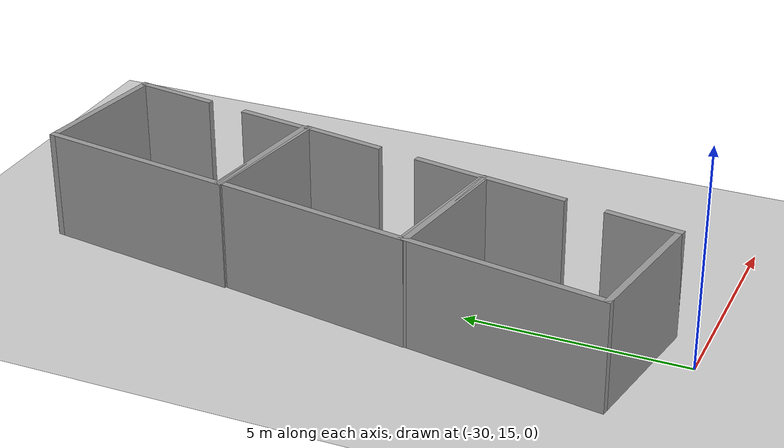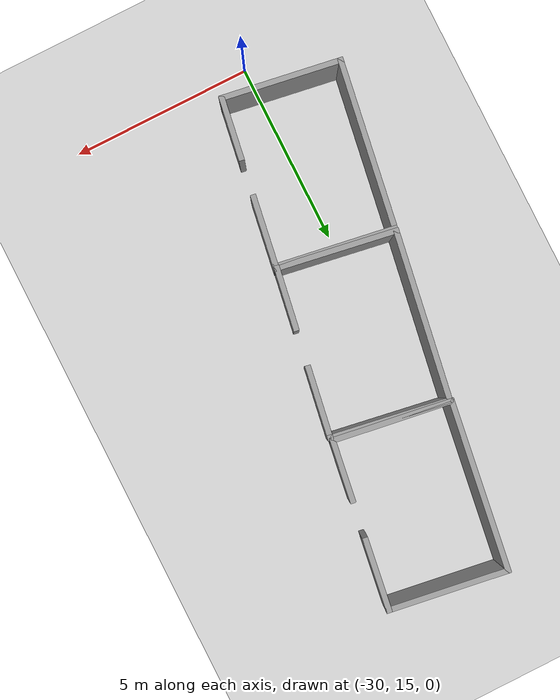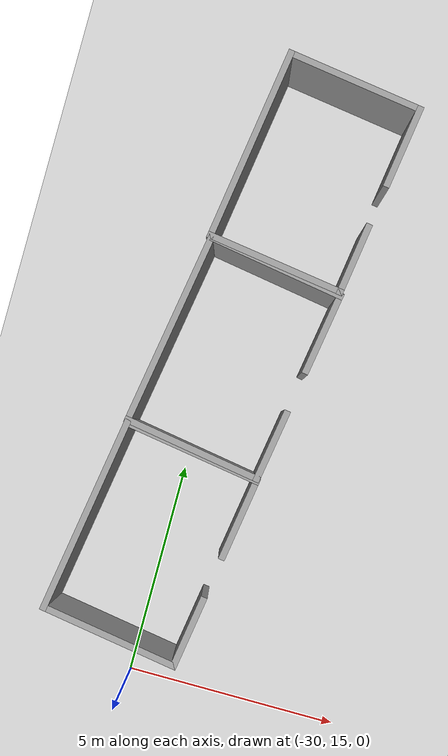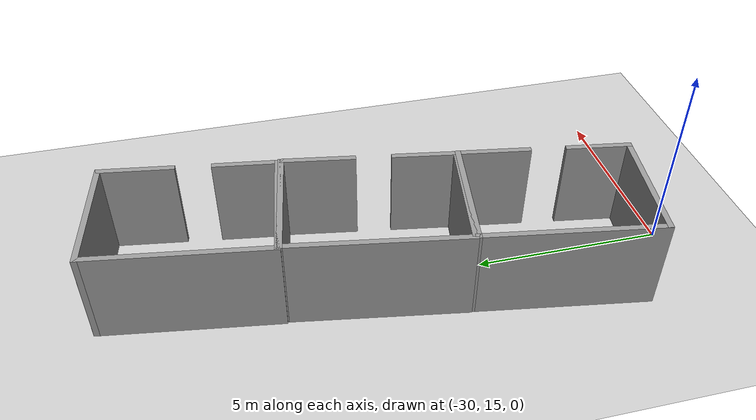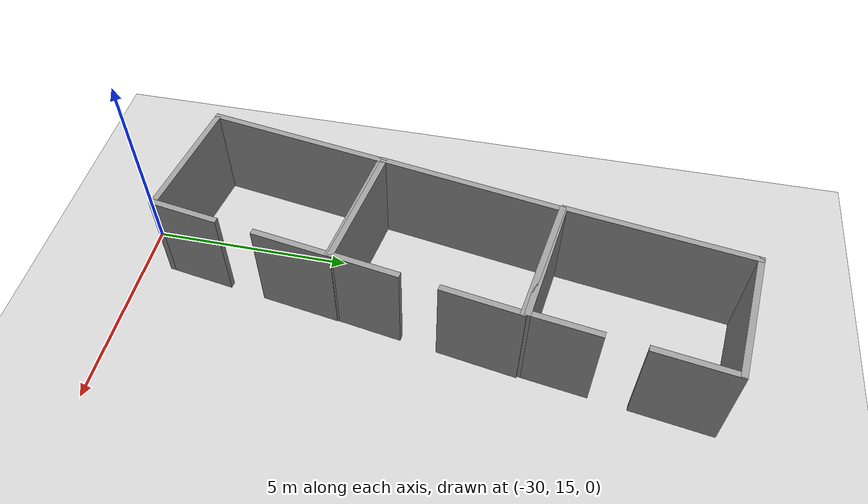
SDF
<sdf version="1.6">
 <world name="default">
  <model name="ground_plane">
   <static>1</static>
   <link name="link">
    <collision name="collision">
     <geometry><plane><normal>0 0 1</normal><size>100 100</size></plane></geometry>
     <surface>
      <contact><collide_bitmask>65535</collide_bitmask></contact>
      <friction><ode><mu>100</mu><mu2>50</mu2></ode></friction>
     </surface>
    </collision>
    <visual name="visual">
     <cast_shadows>0</cast_shadows>
     <geometry><plane><normal>0 0 1</normal><size>100 100</size></plane></geometry>
     <material>
      <script><uri>file://media/materials/scripts/gazebo.material</uri><name>Gazebo/Grey</name></script>
     </material>
    </visual>
   </link>
  </model>
  <model name="101Room1_2">
   <link name="Wall_61">
    <pose>1e-06 -2.2585 0 0 -0 0</pose>
    <visual name="Wall_61_Visual">
     <pose>0 0 1.25 0 -0 0</pose>
     <geometry><box><size>3.334 0.15 2.5</size></box></geometry>
     <material>
      <script><uri>file://media/materials/scripts/gazebo.material</uri><name>Gazebo/Grey</name></script>
      <ambient>1 1 1 1</ambient>
      <shader type="pixel"/>
     </material>
     <meta><layer>0</layer></meta>
    </visual>
    <collision name="Wall_61_Collision">
     <pose>0 0 1.25 0 -0 0</pose>
     <geometry><box><size>3.334 0.15 2.5</size></box></geometry>
     <surface>
      <friction>
       <ode><mu>1</mu><mu2>1</mu2><fdir1>0 0 0</fdir1><slip1>0</slip1><slip2>0</slip2></ode>
       <torsional>
        <coefficient>1</coefficient>
        <patch_radius>0</patch_radius>
        <surface_radius>0</surface_radius>
        <use_patch_radius>1</use_patch_radius>
        <ode><slip>0</slip></ode>
       </torsional>
      </friction>
      <bounce><restitution_coefficient>0</restitution_coefficient><threshold>1e+06</threshold></bounce>
      <contact>
       <collide_without_contact>0</collide_without_contact>
       <collide_without_contact_bitmask>1</collide_without_contact_bitmask>
       <collide_bitmask>1</collide_bitmask>
       <ode>
        <soft_cfm>0</soft_cfm>
        <soft_erp>0.2</soft_erp>
        <kp>1e+13</kp>
        <kd>1</kd>
        <max_vel>0.01</max_vel>
        <min_depth>0</min_depth>
       </ode>
       <bullet>
        <split_impulse>1</split_impulse>
        <split_impulse_penetration_threshold>-0.01</split_impulse_penetration_threshold>
        <soft_cfm>0</soft_cfm>
        <soft_erp>0.2</soft_erp>
        <kp>1e+13</kp>
        <kd>1</kd>
       </bullet>
      </contact>
     </surface>
    </collision>
   </link>
   <link name="Wall_63">
    <pose>-1e-06 2.2585 0 0 -0 3.14159</pose>
    <visual name="Wall_63_Visual">
     <pose>0 0 1.25 0 -0 0</pose>
     <geometry><box><size>3.334 0.15 2.5</size></box></geometry>
     <material>
      <script><uri>file://media/materials/scripts/gazebo.material</uri><name>Gazebo/Grey</name></script>
      <ambient>1 1 1 1</ambient>
      <shader type="pixel"/>
     </material>
     <meta><layer>0</layer></meta>
    </visual>
    <collision name="Wall_63_Collision">
     <pose>0 0 1.25 0 -0 0</pose>
     <geometry><box><size>3.334 0.15 2.5</size></box></geometry>
     <surface>
      <friction>
       <ode><mu>1</mu><mu2>1</mu2><fdir1>0 0 0</fdir1><slip1>0</slip1><slip2>0</slip2></ode>
       <torsional>
        <coefficient>1</coefficient>
        <patch_radius>0</patch_radius>
        <surface_radius>0</surface_radius>
        <use_patch_radius>1</use_patch_radius>
        <ode><slip>0</slip></ode>
       </torsional>
      </friction>
      <bounce><restitution_coefficient>0</restitution_coefficient><threshold>1e+06</threshold></bounce>
      <contact>
       <collide_without_contact>0</collide_without_contact>
       <collide_without_contact_bitmask>1</collide_without_contact_bitmask>
       <collide_bitmask>1</collide_bitmask>
       <ode>
        <soft_cfm>0</soft_cfm>
        <soft_erp>0.2</soft_erp>
        <kp>1e+13</kp>
        <kd>1</kd>
        <max_vel>0.01</max_vel>
        <min_depth>0</min_depth>
       </ode>
       <bullet>
        <split_impulse>1</split_impulse>
        <split_impulse_penetration_threshold>-0.01</split_impulse_penetration_threshold>
        <soft_cfm>0</soft_cfm>
        <soft_erp>0.2</soft_erp>
        <kp>1e+13</kp>
        <kd>1</kd>
       </bullet>
      </contact>
     </surface>
    </collision>
   </link>
   <link name="Wall_64">
    <pose>-1.592 -1e-06 0 0 0 -1.5708</pose>
    <visual name="Wall_64_Visual">
     <pose>0 0 1.25 0 -0 0</pose>
     <geometry><box><size>4.66778 0.15 2.5</size></box></geometry>
     <material>
      <script><uri>file://media/materials/scripts/gazebo.material</uri><name>Gazebo/Grey</name></script>
      <ambient>1 1 1 1</ambient>
      <shader type="pixel"/>
     </material>
     <meta><layer>0</layer></meta>
    </visual>
    <collision name="Wall_64_Collision">
     <pose>0 0 1.25 0 -0 0</pose>
     <geometry><box><size>4.66778 0.15 2.5</size></box></geometry>
     <surface>
      <friction>
       <ode><mu>1</mu><mu2>1</mu2><fdir1>0 0 0</fdir1><slip1>0</slip1><slip2>0</slip2></ode>
       <torsional>
        <coefficient>1</coefficient>
        <patch_radius>0</patch_radius>
        <surface_radius>0</surface_radius>
        <use_patch_radius>1</use_patch_radius>
        <ode><slip>0</slip></ode>
       </torsional>
      </friction>
      <bounce><restitution_coefficient>0</restitution_coefficient><threshold>1e+06</threshold></bounce>
      <contact>
       <collide_without_contact>0</collide_without_contact>
       <collide_without_contact_bitmask>1</collide_without_contact_bitmask>
       <collide_bitmask>1</collide_bitmask>
       <ode>
        <soft_cfm>0</soft_cfm>
        <soft_erp>0.2</soft_erp>
        <kp>1e+13</kp>
        <kd>1</kd>
        <max_vel>0.01</max_vel>
        <min_depth>0</min_depth>
       </ode>
       <bullet>
        <split_impulse>1</split_impulse>
        <split_impulse_penetration_threshold>-0.01</split_impulse_penetration_threshold>
        <soft_cfm>0</soft_cfm>
        <soft_erp>0.2</soft_erp>
        <kp>1e+13</kp>
        <kd>1</kd>
       </bullet>
      </contact>
     </surface>
    </collision>
   </link>
   <link name="Wall_66">
    <pose>1.592 1.3335 0 0 0 -1.5708</pose>
    <visual name="Wall_66_Visual">
     <pose>0 0 1.25 0 -0 0</pose>
     <geometry><box><size>2 0.15 2.5</size></box></geometry>
     <material>
      <script><uri>file://media/materials/scripts/gazebo.material</uri><name>Gazebo/Grey</name></script>
      <ambient>1 1 1 1</ambient>
      <shader type="pixel"/>
     </material>
     <meta><layer>0</layer></meta>
    </visual>
    <collision name="Wall_66_Collision">
     <pose>0 0 1.25 0 -0 0</pose>
     <geometry><box><size>2 0.15 2.5</size></box></geometry>
     <surface>
      <friction>
       <ode><mu>1</mu><mu2>1</mu2><fdir1>0 0 0</fdir1><slip1>0</slip1><slip2>0</slip2></ode>
       <torsional>
        <coefficient>1</coefficient>
        <patch_radius>0</patch_radius>
        <surface_radius>0</surface_radius>
        <use_patch_radius>1</use_patch_radius>
        <ode><slip>0</slip></ode>
       </torsional>
      </friction>
      <bounce><restitution_coefficient>0</restitution_coefficient><threshold>1e+06</threshold></bounce>
      <contact>
       <collide_without_contact>0</collide_without_contact>
       <collide_without_contact_bitmask>1</collide_without_contact_bitmask>
       <collide_bitmask>1</collide_bitmask>
       <ode>
        <soft_cfm>0</soft_cfm>
        <soft_erp>0.2</soft_erp>
        <kp>1e+13</kp>
        <kd>1</kd>
        <max_vel>0.01</max_vel>
        <min_depth>0</min_depth>
       </ode>
       <bullet>
        <split_impulse>1</split_impulse>
        <split_impulse_penetration_threshold>-0.01</split_impulse_penetration_threshold>
        <soft_cfm>0</soft_cfm>
        <soft_erp>0.2</soft_erp>
        <kp>1e+13</kp>
        <kd>1</kd>
       </bullet>
      </contact>
     </surface>
    </collision>
   </link>
   <link name="Wall_68">
    <pose>1.592 -1.4585 0 0 0 -1.5708</pose>
    <visual name="Wall_68_Visual">
     <pose>0 0 1.25 0 -0 0</pose>
     <geometry><box><size>1.75 0.15 2.5</size></box></geometry>
     <material>
      <script><uri>file://media/materials/scripts/gazebo.material</uri><name>Gazebo/Grey</name></script>
      <ambient>1 1 1 1</ambient>
      <shader type="pixel"/>
     </material>
     <meta><layer>0</layer></meta>
    </visual>
    <collision name="Wall_68_Collision">
     <pose>0 0 1.25 0 -0 0</pose>
     <geometry><box><size>1.75 0.15 2.5</size></box></geometry>
     <surface>
      <friction>
       <ode><mu>1</mu><mu2>1</mu2><fdir1>0 0 0</fdir1><slip1>0</slip1><slip2>0</slip2></ode>
       <torsional>
        <coefficient>1</coefficient>
        <patch_radius>0</patch_radius>
        <surface_radius>0</surface_radius>
        <use_patch_radius>1</use_patch_radius>
        <ode><slip>0</slip></ode>
       </torsional>
      </friction>
      <bounce><restitution_coefficient>0</restitution_coefficient><threshold>1e+06</threshold></bounce>
      <contact>
       <collide_without_contact>0</collide_without_contact>
       <collide_without_contact_bitmask>1</collide_without_contact_bitmask>
       <collide_bitmask>1</collide_bitmask>
       <ode>
        <soft_cfm>0</soft_cfm>
        <soft_erp>0.2</soft_erp>
        <kp>1e+13</kp>
        <kd>1</kd>
        <max_vel>0.01</max_vel>
        <min_depth>0</min_depth>
       </ode>
       <bullet>
        <split_impulse>1</split_impulse>
        <split_impulse_penetration_threshold>-0.01</split_impulse_penetration_threshold>
        <soft_cfm>0</soft_cfm>
        <soft_erp>0.2</soft_erp>
        <kp>1e+13</kp>
        <kd>1</kd>
       </bullet>
      </contact>
     </surface>
    </collision>
   </link>
   <static>1</static>
   <pose>-30.2396 18.2301 0 0 0 -0.15838</pose>
  </model>
  <model name="101Room1_1">
   <link name="Wall_61">
    <pose>-0 -2.2585 0 0 -0 0</pose>
    <visual name="Wall_61_Visual">
     <pose>0 0 1.25 0 -0 0</pose>
     <geometry><box><size>3.334 0.15 2.5</size></box></geometry>
     <material>
      <script><uri>file://media/materials/scripts/gazebo.material</uri><name>Gazebo/Grey</name></script>
      <ambient>1 1 1 1</ambient>
      <shader type="pixel"/>
     </material>
     <meta><layer>0</layer></meta>
    </visual>
    <collision name="Wall_61_Collision">
     <pose>0 0 1.25 0 -0 0</pose>
     <geometry><box><size>3.334 0.15 2.5</size></box></geometry>
     <surface>
      <friction>
       <ode><mu>1</mu><mu2>1</mu2><fdir1>0 0 0</fdir1><slip1>0</slip1><slip2>0</slip2></ode>
       <torsional>
        <coefficient>1</coefficient>
        <patch_radius>0</patch_radius>
        <surface_radius>0</surface_radius>
        <use_patch_radius>1</use_patch_radius>
        <ode><slip>0</slip></ode>
       </torsional>
      </friction>
      <bounce><restitution_coefficient>0</restitution_coefficient><threshold>1e+06</threshold></bounce>
      <contact>
       <collide_without_contact>0</collide_without_contact>
       <collide_without_contact_bitmask>1</collide_without_contact_bitmask>
       <collide_bitmask>1</collide_bitmask>
       <ode>
        <soft_cfm>0</soft_cfm>
        <soft_erp>0.2</soft_erp>
        <kp>1e+13</kp>
        <kd>1</kd>
        <max_vel>0.01</max_vel>
        <min_depth>0</min_depth>
       </ode>
       <bullet>
        <split_impulse>1</split_impulse>
        <split_impulse_penetration_threshold>-0.01</split_impulse_penetration_threshold>
        <soft_cfm>0</soft_cfm>
        <soft_erp>0.2</soft_erp>
        <kp>1e+13</kp>
        <kd>1</kd>
       </bullet>
      </contact>
     </surface>
    </collision>
   </link>
   <link name="Wall_63">
    <pose>0 2.2585 0 0 -0 3.14159</pose>
    <visual name="Wall_63_Visual">
     <pose>0 0 1.25 0 -0 0</pose>
     <geometry><box><size>3.334 0.15 2.5</size></box></geometry>
     <material>
      <script><uri>file://media/materials/scripts/gazebo.material</uri><name>Gazebo/Grey</name></script>
      <ambient>1 1 1 1</ambient>
      <shader type="pixel"/>
     </material>
     <meta><layer>0</layer></meta>
    </visual>
    <collision name="Wall_63_Collision">
     <pose>0 0 1.25 0 -0 0</pose>
     <geometry><box><size>3.334 0.15 2.5</size></box></geometry>
     <surface>
      <friction>
       <ode><mu>1</mu><mu2>1</mu2><fdir1>0 0 0</fdir1><slip1>0</slip1><slip2>0</slip2></ode>
       <torsional>
        <coefficient>1</coefficient>
        <patch_radius>0</patch_radius>
        <surface_radius>0</surface_radius>
        <use_patch_radius>1</use_patch_radius>
        <ode><slip>0</slip></ode>
       </torsional>
      </friction>
      <bounce><restitution_coefficient>0</restitution_coefficient><threshold>1e+06</threshold></bounce>
      <contact>
       <collide_without_contact>0</collide_without_contact>
       <collide_without_contact_bitmask>1</collide_without_contact_bitmask>
       <collide_bitmask>1</collide_bitmask>
       <ode>
        <soft_cfm>0</soft_cfm>
        <soft_erp>0.2</soft_erp>
        <kp>1e+13</kp>
        <kd>1</kd>
        <max_vel>0.01</max_vel>
        <min_depth>0</min_depth>
       </ode>
       <bullet>
        <split_impulse>1</split_impulse>
        <split_impulse_penetration_threshold>-0.01</split_impulse_penetration_threshold>
        <soft_cfm>0</soft_cfm>
        <soft_erp>0.2</soft_erp>
        <kp>1e+13</kp>
        <kd>1</kd>
       </bullet>
      </contact>
     </surface>
    </collision>
   </link>
   <link name="Wall_64">
    <pose>-1.592 1e-06 0 0 0 -1.5708</pose>
    <visual name="Wall_64_Visual">
     <pose>0 0 1.25 0 -0 0</pose>
     <geometry><box><size>4.66778 0.15 2.5</size></box></geometry>
     <material>
      <script><uri>file://media/materials/scripts/gazebo.material</uri><name>Gazebo/Grey</name></script>
      <ambient>1 1 1 1</ambient>
      <shader type="pixel"/>
     </material>
     <meta><layer>0</layer></meta>
    </visual>
    <collision name="Wall_64_Collision">
     <pose>0 0 1.25 0 -0 0</pose>
     <geometry><box><size>4.66778 0.15 2.5</size></box></geometry>
     <surface>
      <friction>
       <ode><mu>1</mu><mu2>1</mu2><fdir1>0 0 0</fdir1><slip1>0</slip1><slip2>0</slip2></ode>
       <torsional>
        <coefficient>1</coefficient>
        <patch_radius>0</patch_radius>
        <surface_radius>0</surface_radius>
        <use_patch_radius>1</use_patch_radius>
        <ode><slip>0</slip></ode>
       </torsional>
      </friction>
      <bounce><restitution_coefficient>0</restitution_coefficient><threshold>1e+06</threshold></bounce>
      <contact>
       <collide_without_contact>0</collide_without_contact>
       <collide_without_contact_bitmask>1</collide_without_contact_bitmask>
       <collide_bitmask>1</collide_bitmask>
       <ode>
        <soft_cfm>0</soft_cfm>
        <soft_erp>0.2</soft_erp>
        <kp>1e+13</kp>
        <kd>1</kd>
        <max_vel>0.01</max_vel>
        <min_depth>0</min_depth>
       </ode>
       <bullet>
        <split_impulse>1</split_impulse>
        <split_impulse_penetration_threshold>-0.01</split_impulse_penetration_threshold>
        <soft_cfm>0</soft_cfm>
        <soft_erp>0.2</soft_erp>
        <kp>1e+13</kp>
        <kd>1</kd>
       </bullet>
      </contact>
     </surface>
    </collision>
   </link>
   <link name="Wall_66">
    <pose>1.592 1.3335 0 0 0 -1.5708</pose>
    <visual name="Wall_66_Visual">
     <pose>0 0 1.25 0 -0 0</pose>
     <geometry><box><size>2 0.15 2.5</size></box></geometry>
     <material>
      <script><uri>file://media/materials/scripts/gazebo.material</uri><name>Gazebo/Grey</name></script>
      <ambient>1 1 1 1</ambient>
      <shader type="pixel"/>
     </material>
     <meta><layer>0</layer></meta>
    </visual>
    <collision name="Wall_66_Collision">
     <pose>0 0 1.25 0 -0 0</pose>
     <geometry><box><size>2 0.15 2.5</size></box></geometry>
     <surface>
      <friction>
       <ode><mu>1</mu><mu2>1</mu2><fdir1>0 0 0</fdir1><slip1>0</slip1><slip2>0</slip2></ode>
       <torsional>
        <coefficient>1</coefficient>
        <patch_radius>0</patch_radius>
        <surface_radius>0</surface_radius>
        <use_patch_radius>1</use_patch_radius>
        <ode><slip>0</slip></ode>
       </torsional>
      </friction>
      <bounce><restitution_coefficient>0</restitution_coefficient><threshold>1e+06</threshold></bounce>
      <contact>
       <collide_without_contact>0</collide_without_contact>
       <collide_without_contact_bitmask>1</collide_without_contact_bitmask>
       <collide_bitmask>1</collide_bitmask>
       <ode>
        <soft_cfm>0</soft_cfm>
        <soft_erp>0.2</soft_erp>
        <kp>1e+13</kp>
        <kd>1</kd>
        <max_vel>0.01</max_vel>
        <min_depth>0</min_depth>
       </ode>
       <bullet>
        <split_impulse>1</split_impulse>
        <split_impulse_penetration_threshold>-0.01</split_impulse_penetration_threshold>
        <soft_cfm>0</soft_cfm>
        <soft_erp>0.2</soft_erp>
        <kp>1e+13</kp>
        <kd>1</kd>
       </bullet>
      </contact>
     </surface>
    </collision>
   </link>
   <link name="Wall_68">
    <pose>1.592 -1.4585 0 0 0 -1.5708</pose>
    <visual name="Wall_68_Visual">
     <pose>0 0 1.25 0 -0 0</pose>
     <geometry><box><size>1.75 0.15 2.5</size></box></geometry>
     <material>
      <script><uri>file://media/materials/scripts/gazebo.material</uri><name>Gazebo/Grey</name></script>
      <ambient>1 1 1 1</ambient>
      <shader type="pixel"/>
     </material>
     <meta><layer>0</layer></meta>
    </visual>
    <collision name="Wall_68_Collision">
     <pose>0 0 1.25 0 -0 0</pose>
     <geometry><box><size>1.75 0.15 2.5</size></box></geometry>
     <surface>
      <friction>
       <ode><mu>1</mu><mu2>1</mu2><fdir1>0 0 0</fdir1><slip1>0</slip1><slip2>0</slip2></ode>
       <torsional>
        <coefficient>1</coefficient>
        <patch_radius>0</patch_radius>
        <surface_radius>0</surface_radius>
        <use_patch_radius>1</use_patch_radius>
        <ode><slip>0</slip></ode>
       </torsional>
      </friction>
      <bounce><restitution_coefficient>0</restitution_coefficient><threshold>1e+06</threshold></bounce>
      <contact>
       <collide_without_contact>0</collide_without_contact>
       <collide_without_contact_bitmask>1</collide_without_contact_bitmask>
       <collide_bitmask>1</collide_bitmask>
       <ode>
        <soft_cfm>0</soft_cfm>
        <soft_erp>0.2</soft_erp>
        <kp>1e+13</kp>
        <kd>1</kd>
        <max_vel>0.01</max_vel>
        <min_depth>0</min_depth>
       </ode>
       <bullet>
        <split_impulse>1</split_impulse>
        <split_impulse_penetration_threshold>-0.01</split_impulse_penetration_threshold>
        <soft_cfm>0</soft_cfm>
        <soft_erp>0.2</soft_erp>
        <kp>1e+13</kp>
        <kd>1</kd>
       </bullet>
      </contact>
     </surface>
    </collision>
   </link>
   <static>1</static>
   <pose>-29.5192 22.749 0 0 0 -0.16409</pose>
  </model>
  <model name="101Room1_0">
   <link name="Wall_61">
    <pose>0 -2.2585 0 0 -0 0</pose>
    <visual name="Wall_61_Visual">
     <pose>0 0 1.25 0 -0 0</pose>
     <geometry><box><size>3.334 0.15 2.5</size></box></geometry>
     <material>
      <script><uri>file://media/materials/scripts/gazebo.material</uri><name>Gazebo/Grey</name></script>
      <ambient>1 1 1 1</ambient>
      <shader type="pixel"/>
     </material>
     <meta><layer>0</layer></meta>
    </visual>
    <collision name="Wall_61_Collision">
     <pose>0 0 1.25 0 -0 0</pose>
     <geometry><box><size>3.334 0.15 2.5</size></box></geometry>
     <surface>
      <friction>
       <ode><mu>1</mu><mu2>1</mu2><fdir1>0 0 0</fdir1><slip1>0</slip1><slip2>0</slip2></ode>
       <torsional>
        <coefficient>1</coefficient>
        <patch_radius>0</patch_radius>
        <surface_radius>0</surface_radius>
        <use_patch_radius>1</use_patch_radius>
        <ode><slip>0</slip></ode>
       </torsional>
      </friction>
      <bounce><restitution_coefficient>0</restitution_coefficient><threshold>1e+06</threshold></bounce>
      <contact>
       <collide_without_contact>0</collide_without_contact>
       <collide_without_contact_bitmask>1</collide_without_contact_bitmask>
       <collide_bitmask>1</collide_bitmask>
       <ode>
        <soft_cfm>0</soft_cfm>
        <soft_erp>0.2</soft_erp>
        <kp>1e+13</kp>
        <kd>1</kd>
        <max_vel>0.01</max_vel>
        <min_depth>0</min_depth>
       </ode>
       <bullet>
        <split_impulse>1</split_impulse>
        <split_impulse_penetration_threshold>-0.01</split_impulse_penetration_threshold>
        <soft_cfm>0</soft_cfm>
        <soft_erp>0.2</soft_erp>
        <kp>1e+13</kp>
        <kd>1</kd>
       </bullet>
      </contact>
     </surface>
    </collision>
   </link>
   <link name="Wall_63">
    <pose>-0 2.2585 0 0 -0 3.14159</pose>
    <visual name="Wall_63_Visual">
     <pose>0 0 1.25 0 -0 0</pose>
     <geometry><box><size>3.334 0.15 2.5</size></box></geometry>
     <material>
      <script><uri>file://media/materials/scripts/gazebo.material</uri><name>Gazebo/Grey</name></script>
      <ambient>1 1 1 1</ambient>
      <shader type="pixel"/>
     </material>
     <meta><layer>0</layer></meta>
    </visual>
    <collision name="Wall_63_Collision">
     <pose>0 0 1.25 0 -0 0</pose>
     <geometry><box><size>3.334 0.15 2.5</size></box></geometry>
     <surface>
      <friction>
       <ode><mu>1</mu><mu2>1</mu2><fdir1>0 0 0</fdir1><slip1>0</slip1><slip2>0</slip2></ode>
       <torsional>
        <coefficient>1</coefficient>
        <patch_radius>0</patch_radius>
        <surface_radius>0</surface_radius>
        <use_patch_radius>1</use_patch_radius>
        <ode><slip>0</slip></ode>
       </torsional>
      </friction>
      <bounce><restitution_coefficient>0</restitution_coefficient><threshold>1e+06</threshold></bounce>
      <contact>
       <collide_without_contact>0</collide_without_contact>
       <collide_without_contact_bitmask>1</collide_without_contact_bitmask>
       <collide_bitmask>1</collide_bitmask>
       <ode>
        <soft_cfm>0</soft_cfm>
        <soft_erp>0.2</soft_erp>
        <kp>1e+13</kp>
        <kd>1</kd>
        <max_vel>0.01</max_vel>
        <min_depth>0</min_depth>
       </ode>
       <bullet>
        <split_impulse>1</split_impulse>
        <split_impulse_penetration_threshold>-0.01</split_impulse_penetration_threshold>
        <soft_cfm>0</soft_cfm>
        <soft_erp>0.2</soft_erp>
        <kp>1e+13</kp>
        <kd>1</kd>
       </bullet>
      </contact>
     </surface>
    </collision>
   </link>
   <link name="Wall_64">
    <pose>-1.592 -0 0 0 0 -1.5708</pose>
    <visual name="Wall_64_Visual">
     <pose>0 0 1.25 0 -0 0</pose>
     <geometry><box><size>4.66778 0.15 2.5</size></box></geometry>
     <material>
      <script><uri>file://media/materials/scripts/gazebo.material</uri><name>Gazebo/Grey</name></script>
      <ambient>1 1 1 1</ambient>
      <shader type="pixel"/>
     </material>
     <meta><layer>0</layer></meta>
    </visual>
    <collision name="Wall_64_Collision">
     <pose>0 0 1.25 0 -0 0</pose>
     <geometry><box><size>4.66778 0.15 2.5</size></box></geometry>
     <surface>
      <friction>
       <ode><mu>1</mu><mu2>1</mu2><fdir1>0 0 0</fdir1><slip1>0</slip1><slip2>0</slip2></ode>
       <torsional>
        <coefficient>1</coefficient>
        <patch_radius>0</patch_radius>
        <surface_radius>0</surface_radius>
        <use_patch_radius>1</use_patch_radius>
        <ode><slip>0</slip></ode>
       </torsional>
      </friction>
      <bounce><restitution_coefficient>0</restitution_coefficient><threshold>1e+06</threshold></bounce>
      <contact>
       <collide_without_contact>0</collide_without_contact>
       <collide_without_contact_bitmask>1</collide_without_contact_bitmask>
       <collide_bitmask>1</collide_bitmask>
       <ode>
        <soft_cfm>0</soft_cfm>
        <soft_erp>0.2</soft_erp>
        <kp>1e+13</kp>
        <kd>1</kd>
        <max_vel>0.01</max_vel>
        <min_depth>0</min_depth>
       </ode>
       <bullet>
        <split_impulse>1</split_impulse>
        <split_impulse_penetration_threshold>-0.01</split_impulse_penetration_threshold>
        <soft_cfm>0</soft_cfm>
        <soft_erp>0.2</soft_erp>
        <kp>1e+13</kp>
        <kd>1</kd>
       </bullet>
      </contact>
     </surface>
    </collision>
   </link>
   <link name="Wall_66">
    <pose>1.592 1.3335 0 0 0 -1.5708</pose>
    <visual name="Wall_66_Visual">
     <pose>0 0 1.25 0 -0 0</pose>
     <geometry><box><size>2 0.15 2.5</size></box></geometry>
     <material>
      <script><uri>file://media/materials/scripts/gazebo.material</uri><name>Gazebo/Grey</name></script>
      <ambient>1 1 1 1</ambient>
      <shader type="pixel"/>
     </material>
     <meta><layer>0</layer></meta>
    </visual>
    <collision name="Wall_66_Collision">
     <pose>0 0 1.25 0 -0 0</pose>
     <geometry><box><size>2 0.15 2.5</size></box></geometry>
     <surface>
      <friction>
       <ode><mu>1</mu><mu2>1</mu2><fdir1>0 0 0</fdir1><slip1>0</slip1><slip2>0</slip2></ode>
       <torsional>
        <coefficient>1</coefficient>
        <patch_radius>0</patch_radius>
        <surface_radius>0</surface_radius>
        <use_patch_radius>1</use_patch_radius>
        <ode><slip>0</slip></ode>
       </torsional>
      </friction>
      <bounce><restitution_coefficient>0</restitution_coefficient><threshold>1e+06</threshold></bounce>
      <contact>
       <collide_without_contact>0</collide_without_contact>
       <collide_without_contact_bitmask>1</collide_without_contact_bitmask>
       <collide_bitmask>1</collide_bitmask>
       <ode>
        <soft_cfm>0</soft_cfm>
        <soft_erp>0.2</soft_erp>
        <kp>1e+13</kp>
        <kd>1</kd>
        <max_vel>0.01</max_vel>
        <min_depth>0</min_depth>
       </ode>
       <bullet>
        <split_impulse>1</split_impulse>
        <split_impulse_penetration_threshold>-0.01</split_impulse_penetration_threshold>
        <soft_cfm>0</soft_cfm>
        <soft_erp>0.2</soft_erp>
        <kp>1e+13</kp>
        <kd>1</kd>
       </bullet>
      </contact>
     </surface>
    </collision>
   </link>
   <link name="Wall_68">
    <pose>1.592 -1.4585 0 0 0 -1.5708</pose>
    <visual name="Wall_68_Visual">
     <pose>0 0 1.25 0 -0 0</pose>
     <geometry><box><size>1.75 0.15 2.5</size></box></geometry>
     <material>
      <script><uri>file://media/materials/scripts/gazebo.material</uri><name>Gazebo/Grey</name></script>
      <ambient>1 1 1 1</ambient>
      <shader type="pixel"/>
     </material>
     <meta><layer>0</layer></meta>
    </visual>
    <collision name="Wall_68_Collision">
     <pose>0 0 1.25 0 -0 0</pose>
     <geometry><box><size>1.75 0.15 2.5</size></box></geometry>
     <surface>
      <friction>
       <ode><mu>1</mu><mu2>1</mu2><fdir1>0 0 0</fdir1><slip1>0</slip1><slip2>0</slip2></ode>
       <torsional>
        <coefficient>1</coefficient>
        <patch_radius>0</patch_radius>
        <surface_radius>0</surface_radius>
        <use_patch_radius>1</use_patch_radius>
        <ode><slip>0</slip></ode>
       </torsional>
      </friction>
      <bounce><restitution_coefficient>0</restitution_coefficient><threshold>1e+06</threshold></bounce>
      <contact>
       <collide_without_contact>0</collide_without_contact>
       <collide_without_contact_bitmask>1</collide_without_contact_bitmask>
       <collide_bitmask>1</collide_bitmask>
       <ode>
        <soft_cfm>0</soft_cfm>
        <soft_erp>0.2</soft_erp>
        <kp>1e+13</kp>
        <kd>1</kd>
        <max_vel>0.01</max_vel>
        <min_depth>0</min_depth>
       </ode>
       <bullet>
        <split_impulse>1</split_impulse>
        <split_impulse_penetration_threshold>-0.01</split_impulse_penetration_threshold>
        <soft_cfm>0</soft_cfm>
        <soft_erp>0.2</soft_erp>
        <kp>1e+13</kp>
        <kd>1</kd>
       </bullet>
      </contact>
     </surface>
    </collision>
   </link>
   <static>1</static>
   <pose>-28.8447 27.2752 0 0 0 -0.14894</pose>
  </model>
 </world>
</sdf>
